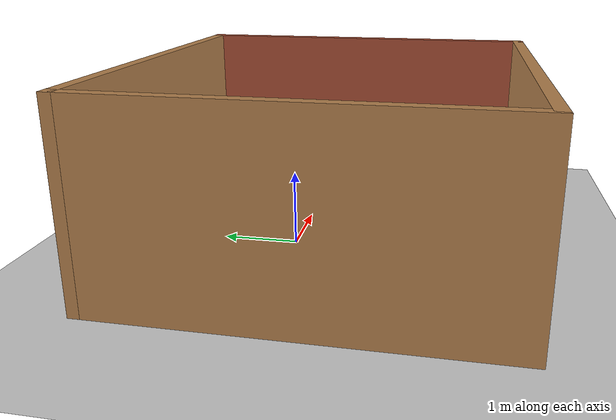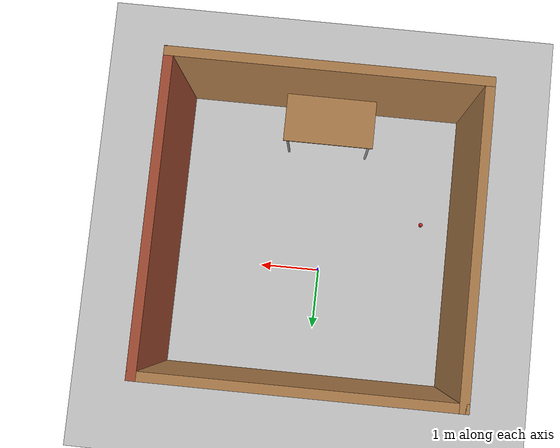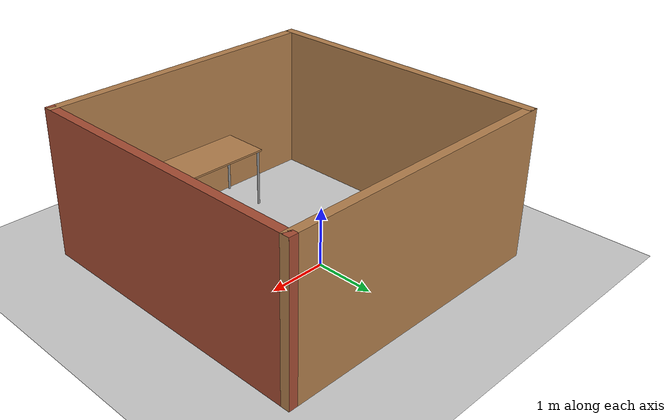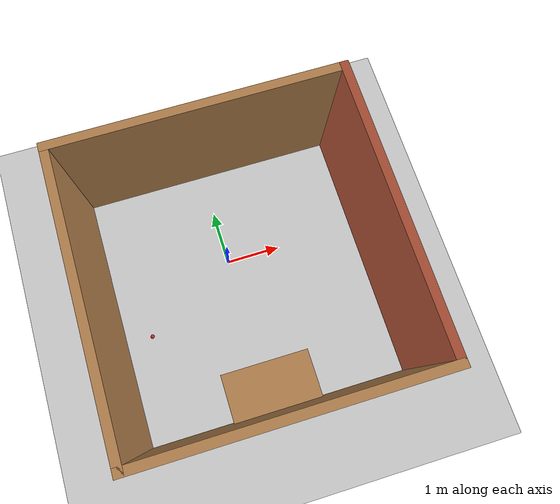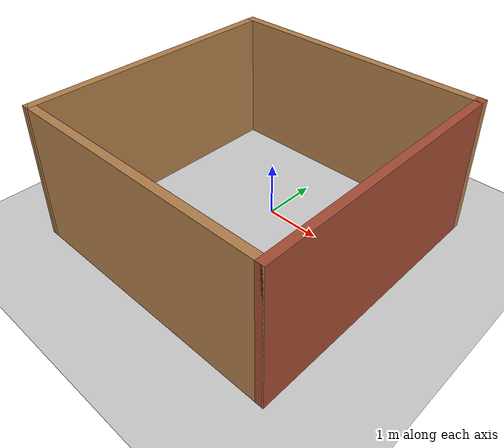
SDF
<sdf version="1.6">
 <world name="default">
  <light name="sun" type="directional">
   <pose>0 0 10 0 -0 0</pose>
   <diffuse>0.8 0.8 0.8 1</diffuse>
   <specular>0.2 0.2 0.2 1</specular>
   <attenuation>
    <range>1000</range>
    <constant>0.9</constant>
    <linear>0.01</linear>
    <quadratic>0.001</quadratic>
   </attenuation>
   <direction>-0.5 0.1 -0.9</direction>
  </light>
  <model name="ground_plane">
   <static>1</static>
   <link name="link">
    <collision name="collision">
     <geometry><plane><normal>0 0 1</normal><size>100 100</size></plane></geometry>
     <surface>
      <contact><collide_bitmask>65535</collide_bitmask></contact>
      <friction><ode><mu>100</mu><mu2>50</mu2></ode></friction>
     </surface>
    </collision>
    <visual name="visual">
     <cast_shadows>0</cast_shadows>
     <geometry><plane><normal>0 0 1</normal><size>100 100</size></plane></geometry>
     <material>
      <script><uri>file://media/materials/scripts/gazebo.material</uri><name>Gazebo/Grey</name></script>
     </material>
    </visual>
   </link>
  </model>
  <gravity>0 0 -9.8</gravity>
  <magnetic_field>6e-06 2.3e-05 -4.2e-05</magnetic_field>
  <atmosphere type="adiabatic"/>
  <physics name="default_physics" default="0" type="ode">
   <max_step_size>0.001</max_step_size>
   <real_time_factor>1</real_time_factor>
   <real_time_update_rate>1000</real_time_update_rate>
  </physics>
  <scene><ambient>0.4 0.4 0.4 1</ambient><background>0.7 0.7 0.7 1</background><shadows>1</shadows></scene>
  <spherical_coordinates>
   <surface_model>EARTH_WGS84</surface_model>
   <latitude_deg>0</latitude_deg>
   <longitude_deg>0</longitude_deg>
   <elevation>0</elevation>
   <heading_deg>0</heading_deg>
  </spherical_coordinates>
  <model name="Untitled">
   <pose>0.122676 -0.526679 0 0 -0 0</pose>
   <link name="Wall_0">
    <collision name="Wall_0_Collision">
     <geometry><box><size>5 0.15 2.5</size></box></geometry>
     <pose>0 0 1.25 0 -0 0</pose>
    </collision>
    <visual name="Wall_0_Visual">
     <pose>0 0 1.25 0 -0 0</pose>
     <geometry><box><size>5 0.15 2.5</size></box></geometry>
     <material>
      <script><uri>file://media/materials/scripts/gazebo.material</uri><name>Gazebo/Wood</name></script>
      <ambient>1 1 1 1</ambient>
     </material>
     <meta><layer>0</layer></meta>
    </visual>
    <pose>0 -2.425 0 0 -0 0</pose>
   </link>
   <link name="Wall_1">
    <collision name="Wall_1_Collision">
     <geometry><box><size>5 0.15 2.5</size></box></geometry>
     <pose>0 0 1.25 0 -0 0</pose>
    </collision>
    <visual name="Wall_1_Visual">
     <pose>0 0 1.25 0 -0 0</pose>
     <geometry><box><size>5 0.15 2.5</size></box></geometry>
     <material>
      <script><uri>file://media/materials/scripts/gazebo.material</uri><name>Gazebo/Bricks</name></script>
      <ambient>1 1 1 1</ambient>
     </material>
     <meta><layer>0</layer></meta>
    </visual>
    <pose>2.425 0 0 0 -0 1.5708</pose>
   </link>
   <link name="Wall_2">
    <collision name="Wall_2_Collision">
     <geometry><box><size>5 0.15 2.5</size></box></geometry>
     <pose>0 0 1.25 0 -0 0</pose>
    </collision>
    <visual name="Wall_2_Visual">
     <pose>0 0 1.25 0 -0 0</pose>
     <geometry><box><size>5 0.15 2.5</size></box></geometry>
     <material>
      <script><uri>file://media/materials/scripts/gazebo.material</uri><name>Gazebo/Wood</name></script>
      <ambient>1 1 1 1</ambient>
     </material>
     <meta><layer>0</layer></meta>
    </visual>
    <pose>0 2.425 0 0 -0 3.14159</pose>
   </link>
   <link name="Wall_3">
    <collision name="Wall_3_Collision">
     <geometry><box><size>5 0.15 2.5</size></box></geometry>
     <pose>0 0 1.25 0 -0 0</pose>
    </collision>
    <visual name="Wall_3_Visual">
     <pose>0 0 1.25 0 -0 0</pose>
     <geometry><box><size>5 0.15 2.5</size></box></geometry>
     <material>
      <script><uri>file://media/materials/scripts/gazebo.material</uri><name>Gazebo/Wood</name></script>
      <ambient>1 1 1 1</ambient>
     </material>
     <meta><layer>0</layer></meta>
    </visual>
    <pose>-2.425 0 0 0 0 -1.5708</pose>
   </link>
   <static>1</static>
  </model>
  <model name="table">
   <static>1</static>
   <link name="link">
    <collision name="surface">
     <pose>0 0 1 0 -0 0</pose>
     <geometry><box><size>1.5 0.8 0.03</size></box></geometry>
     <surface><friction><ode><mu>0.6</mu><mu2>0.6</mu2></ode></friction></surface>
    </collision>
    <visual name="visual1">
     <pose>0 0 1 0 -0 0</pose>
     <geometry><box><size>1.5 0.8 0.03</size></box></geometry>
     <material>
      <script><uri>file://media/materials/scripts/gazebo.material</uri><name>Gazebo/Wood</name></script>
     </material>
    </visual>
    <collision name="front_left_leg">
     <pose>0.68 0.38 0.5 0 -0 0</pose>
     <geometry><cylinder><radius>0.02</radius><length>1</length></cylinder></geometry>
    </collision>
    <visual name="front_left_leg">
     <pose>0.68 0.38 0.5 0 -0 0</pose>
     <geometry><cylinder><radius>0.02</radius><length>1</length></cylinder></geometry>
     <material>
      <script><uri>file://media/materials/scripts/gazebo.material</uri><name>Gazebo/Grey</name></script>
     </material>
    </visual>
    <collision name="front_right_leg">
     <pose>0.68 -0.38 0.5 0 -0 0</pose>
     <geometry><cylinder><radius>0.02</radius><length>1</length></cylinder></geometry>
    </collision>
    <visual name="front_right_leg">
     <pose>0.68 -0.38 0.5 0 -0 0</pose>
     <geometry><cylinder><radius>0.02</radius><length>1</length></cylinder></geometry>
     <material>
      <script><uri>file://media/materials/scripts/gazebo.material</uri><name>Gazebo/Grey</name></script>
     </material>
    </visual>
    <collision name="back_right_leg">
     <pose>-0.68 -0.38 0.5 0 -0 0</pose>
     <geometry><cylinder><radius>0.02</radius><length>1</length></cylinder></geometry>
    </collision>
    <visual name="back_right_leg">
     <pose>-0.68 -0.38 0.5 0 -0 0</pose>
     <geometry><cylinder><radius>0.02</radius><length>1</length></cylinder></geometry>
     <material>
      <script><uri>file://media/materials/scripts/gazebo.material</uri><name>Gazebo/Grey</name></script>
     </material>
    </visual>
    <collision name="back_left_leg">
     <pose>-0.68 0.38 0.5 0 -0 0</pose>
     <geometry><cylinder><radius>0.02</radius><length>1</length></cylinder></geometry>
    </collision>
    <visual name="back_left_leg">
     <pose>-0.68 0.38 0.5 0 -0 0</pose>
     <geometry><cylinder><radius>0.02</radius><length>1</length></cylinder></geometry>
     <material>
      <script><uri>file://media/materials/scripts/gazebo.material</uri><name>Gazebo/Grey</name></script>
     </material>
    </visual>
   </link>
   <pose>0.036508 -2.46078 0 0 -0 0</pose>
  </model>
  <model name="cricket_ball">
   <link name="link">
    <pose>0 0 0.0375 0 -0 0</pose>
    <inertial>
     <mass>0.1467</mass>
     <inertia>
      <ixx>8.25187e-05</ixx>
      <ixy>0</ixy>
      <ixz>0</ixz>
      <iyy>8.25187e-05</iyy>
      <iyz>0</iyz>
      <izz>8.25187e-05</izz>
     </inertia>
    </inertial>
    <collision name="collision">
     <geometry><sphere><radius>0.0375</radius></sphere></geometry>
     <surface>
      <contact>
       <poissons_ratio>0.347</poissons_ratio>
       <elastic_modulus>8.8e+09</elastic_modulus>
       <ode><kp>100000</kp><kd>100</kd><max_vel>100</max_vel><min_depth>0.001</min_depth></ode>
      </contact>
      <friction>
       <torsional>
        <coefficient>1</coefficient>
        <use_patch_radius>0</use_patch_radius>
        <surface_radius>0.01</surface_radius>
       </torsional>
      </friction>
     </surface>
    </collision>
    <visual name="visual">
     <geometry><sphere><radius>0.0375</radius></sphere></geometry>
     <material>
      <script><uri>file://media/materials/scripts/gazebo.material</uri><name>Gazebo/Red</name></script>
     </material>
    </visual>
    <velocity_decay><linear>0</linear><angular>0.005</angular></velocity_decay>
   </link>
   <pose>-1.73949 -0.972786 -0.001014 0 -0 0</pose>
  </model>
 </world>
</sdf>
